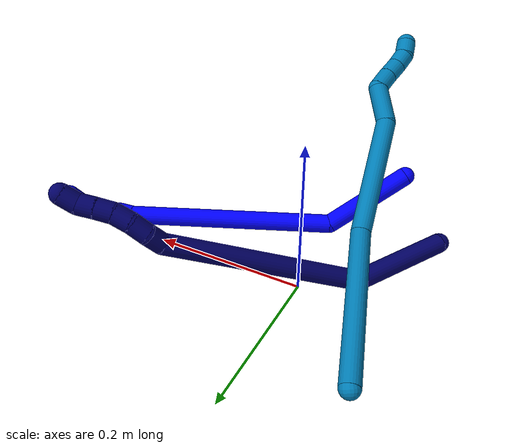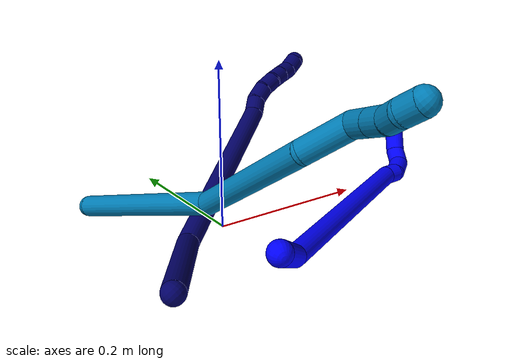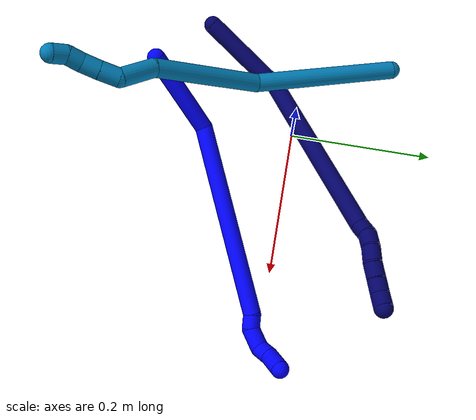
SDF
<sdf version="1.7">
 <world name="default">
  <model name="photoneo_s_sensor">
   <static>1</static>
   <pose>0 0 2 1.57079 1.57079 3.14159</pose>
   <link name="link">
    <inertial><mass>0.1</mass></inertial>
    <sensor name="sensor" type="depth">
     <update_rate>30</update_rate>
     <camera>
      <horizontal_fov>1.22</horizontal_fov>
      <image><width>1920</width><height>1200</height><format>B8G8R8</format></image>
      <clip><near>0.1</near><far>4</far></clip>
      <depth_camera><output>points</output></depth_camera>
     </camera>
     <plugin name="camera_plugin" filename="libgazebo_ros_depth_camera.so">
      <baseline>0.2</baseline>
      <alwaysOn>1</alwaysOn>
      <updateRate>0.0</updateRate>
      <cameraName>camera_ir</cameraName>
      <imageTopicName>/camera/color/image_raw</imageTopicName>
      <cameraInfoTopicName>/camera/color/camera_info</cameraInfoTopicName>
      <depthImageTopicName>/camera/depth/image_raw</depthImageTopicName>
      <depthImageCameraInfoTopicName>/camera/depth/camera_info</depthImageCameraInfoTopicName>
      <pointCloudTopicName>/camera/depth/points</pointCloudTopicName>
      <frameName>fr_optical</frameName>
      <pointCloudCutoff>0.1</pointCloudCutoff>
      <pointCloudCutoffMax>2.0</pointCloudCutoffMax>
      <distortionK1>0</distortionK1>
      <distortionK2>0</distortionK2>
      <distortionK3>0</distortionK3>
      <distortionT1>0</distortionT1>
      <distortionT2>0</distortionT2>
      <CxPrime>0</CxPrime>
      <Cx>0</Cx>
      <Cy>0</Cy>
      <focalLength>0</focalLength>
      <hackBaseline>0</hackBaseline>
     </plugin>
    </sensor>
   </link>
  </model>
  <model name="bin">
   <static>1</static>
   <link name="bottom">
    <collision name="collision-bottom">
     <pose>0 0 -0.01 0 -0 0</pose>
     <geometry><box><size>0.8 0.6 0.02</size></box></geometry>
     <surface>
      <friction><ode><mu>100</mu><mu2>100</mu2></ode></friction>
      <contact><collide_bitmask>65535</collide_bitmask></contact>
     </surface>
    </collision>
   </link>
   <link name="west_wall">
    <collision name="collision-west_wall">
     <pose>-0.41 0 0.1 0 -0 0</pose>
     <geometry><box><size>0.02 0.6 0.2</size></box></geometry>
     <surface>
      <friction><ode><mu>100</mu><mu2>100</mu2></ode></friction>
      <contact><collide_bitmask>65535</collide_bitmask></contact>
     </surface>
    </collision>
   </link>
   <link name="east_wall">
    <collision name="collision-east_wall">
     <pose>0.41 0 0.1 0 -0 0</pose>
     <geometry><box><size>0.02 0.6 0.2</size></box></geometry>
     <surface>
      <friction><ode><mu>100</mu><mu2>100</mu2></ode></friction>
      <contact><collide_bitmask>65535</collide_bitmask></contact>
     </surface>
    </collision>
   </link>
   <link name="south_wall">
    <collision name="collision-south_wall">
     <pose>0 -0.31 0.1 0 -0 0</pose>
     <geometry><box><size>0.8 0.02 0.2</size></box></geometry>
     <surface>
      <friction><ode><mu>100</mu><mu2>100</mu2></ode></friction>
      <contact><collide_bitmask>65535</collide_bitmask></contact>
     </surface>
    </collision>
   </link>
   <link name="north_wall">
    <collision name="collision-north_wall">
     <pose>0 0.31 0.1 0 -0 0</pose>
     <geometry><box><size>0.8 0.02 0.2</size></box></geometry>
     <surface>
      <friction><ode><mu>100</mu><mu2>100</mu2></ode></friction>
      <contact><collide_bitmask>65535</collide_bitmask></contact>
     </surface>
    </collision>
   </link>
  </model>
  <model name="1">
   <static>0</static>
   <link name="1">
    <collision name="collision-cylinder-e_1_1_4">
     <pose>0.040288 -0.011876 -0.043971 2.8778 0.724216 2.46786</pose>
     <geometry><cylinder><radius>0.0125</radius><length>0.121616</length></cylinder></geometry>
     <surface>
      <friction><ode><mu>1.16</mu><mu2>1.16</mu2><slip1>0</slip1><slip2>0</slip2></ode></friction>
      <contact><ode><kp>1e+06</kp><kd>1</kd><max_vel>0</max_vel><min_depth>0.001</min_depth></ode></contact>
     </surface>
    </collision>
    <visual name="visual-cylinder-e_1_1_4">
     <pose>0.040288 -0.011876 -0.043971 2.8778 0.724216 2.46786</pose>
     <geometry><cylinder><radius>0.0125</radius><length>0.121616</length></cylinder></geometry>
     <material><ambient>0 0 1 1</ambient></material>
    </visual>
    <collision name="collision-cylinder-e_2_4_5">
     <pose>0.174627 0.030493 -0.171731 -2.56705 0.755666 -1.86181</pose>
     <geometry><cylinder><radius>0.0125</radius><length>0.274288</length></cylinder></geometry>
     <surface>
      <friction><ode><mu>1.16</mu><mu2>1.16</mu2><slip1>0</slip1><slip2>0</slip2></ode></friction>
      <contact><ode><kp>1e+06</kp><kd>1</kd><max_vel>0</max_vel><min_depth>0.001</min_depth></ode></contact>
     </surface>
    </collision>
    <visual name="visual-cylinder-e_2_4_5">
     <pose>0.174627 0.030493 -0.171731 -2.56705 0.755666 -1.86181</pose>
     <geometry><cylinder><radius>0.0125</radius><length>0.274288</length></cylinder></geometry>
     <material><ambient>0 0 1 1</ambient></material>
    </visual>
    <collision name="collision-cylinder-e_3_5_6">
     <pose>0.277031 0.089479 -0.258624 -2.15048 0.974812 -1.55121</pose>
     <geometry><cylinder><radius>0.0125</radius><length>0.020189</length></cylinder></geometry>
     <surface>
      <friction><ode><mu>1.16</mu><mu2>1.16</mu2><slip1>0</slip1><slip2>0</slip2></ode></friction>
      <contact><ode><kp>1e+06</kp><kd>1</kd><max_vel>0</max_vel><min_depth>0.001</min_depth></ode></contact>
     </surface>
    </collision>
    <visual name="visual-cylinder-e_3_5_6">
     <pose>0.277031 0.089479 -0.258624 -2.15048 0.974812 -1.55121</pose>
     <geometry><cylinder><radius>0.0125</radius><length>0.020189</length></cylinder></geometry>
     <material><ambient>0 0 1 1</ambient></material>
    </visual>
    <collision name="collision-cylinder-e_4_6_7">
     <pose>0.292766 0.100703 -0.272639 -2.60549 0.526697 -1.55223</pose>
     <geometry><cylinder><radius>0.0125</radius><length>0.029365</length></cylinder></geometry>
     <surface>
      <friction><ode><mu>1.16</mu><mu2>1.16</mu2><slip1>0</slip1><slip2>0</slip2></ode></friction>
      <contact><ode><kp>1e+06</kp><kd>1</kd><max_vel>0</max_vel><min_depth>0.001</min_depth></ode></contact>
     </surface>
    </collision>
    <visual name="visual-cylinder-e_4_6_7">
     <pose>0.292766 0.100703 -0.272639 -2.60549 0.526697 -1.55223</pose>
     <geometry><cylinder><radius>0.0125</radius><length>0.029365</length></cylinder></geometry>
     <material><ambient>0 0 1 1</ambient></material>
    </visual>
    <collision name="collision-cylinder-e_5_7_8">
     <pose>0.29831 0.113572 -0.291997 -2.49426 -0.171736 0.502364</pose>
     <geometry><cylinder><radius>0.0125</radius><length>0.021492</length></cylinder></geometry>
     <surface>
      <friction><ode><mu>1.16</mu><mu2>1.16</mu2><slip1>0</slip1><slip2>0</slip2></ode></friction>
      <contact><ode><kp>1e+06</kp><kd>1</kd><max_vel>0</max_vel><min_depth>0.001</min_depth></ode></contact>
     </surface>
    </collision>
    <visual name="visual-cylinder-e_5_7_8">
     <pose>0.29831 0.113572 -0.291997 -2.49426 -0.171736 0.502364</pose>
     <geometry><cylinder><radius>0.0125</radius><length>0.021492</length></cylinder></geometry>
     <material><ambient>0 0 1 1</ambient></material>
    </visual>
    <collision name="collision-cylinder-e_6_8_2">
     <pose>0.293313 0.132792 -0.31036 -2.2286 -0.192416 0.388081</pose>
     <geometry><cylinder><radius>0.0125</radius><length>0.033049</length></cylinder></geometry>
     <surface>
      <friction><ode><mu>1.16</mu><mu2>1.16</mu2><slip1>0</slip1><slip2>0</slip2></ode></friction>
      <contact><ode><kp>1e+06</kp><kd>1</kd><max_vel>0</max_vel><min_depth>0.001</min_depth></ode></contact>
     </surface>
    </collision>
    <visual name="visual-cylinder-e_6_8_2">
     <pose>0.293313 0.132792 -0.31036 -2.2286 -0.192416 0.388081</pose>
     <geometry><cylinder><radius>0.0125</radius><length>0.033049</length></cylinder></geometry>
     <material><ambient>0 0 1 1</ambient></material>
    </visual>
    <collision name="collision-sphere-2">
     <pose>0.290153 0.145627 -0.320276 0 -0 0</pose>
     <geometry><sphere><radius>0.0125</radius></sphere></geometry>
     <surface>
      <friction><ode><mu>1.16</mu><mu2>1.16</mu2><slip1>0</slip1><slip2>0</slip2></ode></friction>
      <contact><ode><kp>1e+06</kp><kd>1</kd><max_vel>0</max_vel><min_depth>0.001</min_depth></ode></contact>
     </surface>
    </collision>
    <visual name="visual-sphere-2">
     <pose>0.290153 0.145627 -0.320276 0 -0 0</pose>
     <geometry><sphere><radius>0.0125</radius></sphere></geometry>
     <material><ambient>0 0 1 1</ambient></material>
    </visual>
    <collision name="collision-sphere-4">
     <pose>0.080577 -0.023752 -0.087942 0 -0 0</pose>
     <geometry><sphere><radius>0.0125</radius></sphere></geometry>
     <surface>
      <friction><ode><mu>1.16</mu><mu2>1.16</mu2><slip1>0</slip1><slip2>0</slip2></ode></friction>
      <contact><ode><kp>1e+06</kp><kd>1</kd><max_vel>0</max_vel><min_depth>0.001</min_depth></ode></contact>
     </surface>
    </collision>
    <visual name="visual-sphere-4">
     <pose>0.080577 -0.023752 -0.087942 0 -0 0</pose>
     <geometry><sphere><radius>0.0125</radius></sphere></geometry>
     <material><ambient>0 0 1 1</ambient></material>
    </visual>
    <collision name="collision-sphere-1">
     <geometry><sphere><radius>0.0125</radius></sphere></geometry>
     <surface>
      <friction><ode><mu>1.16</mu><mu2>1.16</mu2><slip1>0</slip1><slip2>0</slip2></ode></friction>
      <contact><ode><kp>1e+06</kp><kd>1</kd><max_vel>0</max_vel><min_depth>0.001</min_depth></ode></contact>
     </surface>
    </collision>
    <visual name="visual-sphere-1">
     <geometry><sphere><radius>0.0125</radius></sphere></geometry>
     <material><ambient>0 0 1 1</ambient></material>
    </visual>
    <collision name="collision-sphere-8">
     <pose>0.296473 0.119957 -0.300443 0 -0 0</pose>
     <geometry><sphere><radius>0.0125</radius></sphere></geometry>
     <surface>
      <friction><ode><mu>1.16</mu><mu2>1.16</mu2><slip1>0</slip1><slip2>0</slip2></ode></friction>
      <contact><ode><kp>1e+06</kp><kd>1</kd><max_vel>0</max_vel><min_depth>0.001</min_depth></ode></contact>
     </surface>
    </collision>
    <visual name="visual-sphere-8">
     <pose>0.296473 0.119957 -0.300443 0 -0 0</pose>
     <geometry><sphere><radius>0.0125</radius></sphere></geometry>
     <material><ambient>0 0 1 1</ambient></material>
    </visual>
    <collision name="collision-sphere-5">
     <pose>0.268676 0.084739 -0.25552 0 -0 0</pose>
     <geometry><sphere><radius>0.0125</radius></sphere></geometry>
     <surface>
      <friction><ode><mu>1.16</mu><mu2>1.16</mu2><slip1>0</slip1><slip2>0</slip2></ode></friction>
      <contact><ode><kp>1e+06</kp><kd>1</kd><max_vel>0</max_vel><min_depth>0.001</min_depth></ode></contact>
     </surface>
    </collision>
    <visual name="visual-sphere-5">
     <pose>0.268676 0.084739 -0.25552 0 -0 0</pose>
     <geometry><sphere><radius>0.0125</radius></sphere></geometry>
     <material><ambient>0 0 1 1</ambient></material>
    </visual>
    <collision name="collision-sphere-6">
     <pose>0.285385 0.09422 -0.261728 0 -0 0</pose>
     <geometry><sphere><radius>0.0125</radius></sphere></geometry>
     <surface>
      <friction><ode><mu>1.16</mu><mu2>1.16</mu2><slip1>0</slip1><slip2>0</slip2></ode></friction>
      <contact><ode><kp>1e+06</kp><kd>1</kd><max_vel>0</max_vel><min_depth>0.001</min_depth></ode></contact>
     </surface>
    </collision>
    <visual name="visual-sphere-6">
     <pose>0.285385 0.09422 -0.261728 0 -0 0</pose>
     <geometry><sphere><radius>0.0125</radius></sphere></geometry>
     <material><ambient>0 0 1 1</ambient></material>
    </visual>
    <collision name="collision-sphere-7">
     <pose>0.300146 0.107187 -0.283551 0 -0 0</pose>
     <geometry><sphere><radius>0.0125</radius></sphere></geometry>
     <surface>
      <friction><ode><mu>1.16</mu><mu2>1.16</mu2><slip1>0</slip1><slip2>0</slip2></ode></friction>
      <contact><ode><kp>1e+06</kp><kd>1</kd><max_vel>0</max_vel><min_depth>0.001</min_depth></ode></contact>
     </surface>
    </collision>
    <visual name="visual-sphere-7">
     <pose>0.300146 0.107187 -0.283551 0 -0 0</pose>
     <geometry><sphere><radius>0.0125</radius></sphere></geometry>
     <material><ambient>0 0 1 1</ambient></material>
    </visual>
    <inertial>
     <pose>0.166186 0.037026 -0.164423 0 -0 0</pose>
     <mass>0.5</mass>
     <inertia>
      <ixx>-0.001559</ixx>
      <ixy>0</ixy>
      <ixz>0</ixz>
      <iyy>4.2e-05</iyy>
      <iyz>0</iyz>
      <izz>-0.001977</izz>
     </inertia>
    </inertial>
   </link>
   <pose>-0.065955 -0.200768 0.070045 1.62374 0.553104 -0.212474</pose>
  </model>
  <model name="7">
   <static>0</static>
   <link name="7">
    <collision name="collision-cylinder-e_1_1_4">
     <pose>0.045924 0.041514 0.00925 -1.35156 0.823718 -0.67374</pose>
     <geometry><cylinder><radius>0.0125</radius><length>0.125187</length></cylinder></geometry>
     <surface>
      <friction><ode><mu>1.16</mu><mu2>1.16</mu2><slip1>0</slip1><slip2>0</slip2></ode></friction>
      <contact><ode><kp>1e+06</kp><kd>1</kd><max_vel>0</max_vel><min_depth>0.001</min_depth></ode></contact>
     </surface>
    </collision>
    <visual name="visual-cylinder-e_1_1_4">
     <pose>0.045924 0.041514 0.00925 -1.35156 0.823718 -0.67374</pose>
     <geometry><cylinder><radius>0.0125</radius><length>0.125187</length></cylinder></geometry>
     <material><ambient>0.003922 0 0.403922 1</ambient></material>
    </visual>
    <collision name="collision-cylinder-e_2_4_5">
     <pose>0.210475 0.104091 0.049518 -0.596523 1.26467 -0.443115</pose>
     <geometry><cylinder><radius>0.0125</radius><length>0.248825</length></cylinder></geometry>
     <surface>
      <friction><ode><mu>1.16</mu><mu2>1.16</mu2><slip1>0</slip1><slip2>0</slip2></ode></friction>
      <contact><ode><kp>1e+06</kp><kd>1</kd><max_vel>0</max_vel><min_depth>0.001</min_depth></ode></contact>
     </surface>
    </collision>
    <visual name="visual-cylinder-e_2_4_5">
     <pose>0.210475 0.104091 0.049518 -0.596523 1.26467 -0.443115</pose>
     <geometry><cylinder><radius>0.0125</radius><length>0.248825</length></cylinder></geometry>
     <material><ambient>0.003922 0 0.403922 1</ambient></material>
    </visual>
    <collision name="collision-cylinder-e_3_5_6">
     <pose>0.337878 0.123596 0.086468 0.256786 0.960813 0.134356</pose>
     <geometry><cylinder><radius>0.0125</radius><length>0.02141</length></cylinder></geometry>
     <surface>
      <friction><ode><mu>1.16</mu><mu2>1.16</mu2><slip1>0</slip1><slip2>0</slip2></ode></friction>
      <contact><ode><kp>1e+06</kp><kd>1</kd><max_vel>0</max_vel><min_depth>0.001</min_depth></ode></contact>
     </surface>
    </collision>
    <visual name="visual-cylinder-e_3_5_6">
     <pose>0.337878 0.123596 0.086468 0.256786 0.960813 0.134356</pose>
     <geometry><cylinder><radius>0.0125</radius><length>0.02141</length></cylinder></geometry>
     <material><ambient>0.003922 0 0.403922 1</ambient></material>
    </visual>
    <collision name="collision-cylinder-e_4_6_7">
     <pose>0.356864 0.119319 0.095008 0.806145 1.21725 0.577698</pose>
     <geometry><cylinder><radius>0.0125</radius><length>0.02177</length></cylinder></geometry>
     <surface>
      <friction><ode><mu>1.16</mu><mu2>1.16</mu2><slip1>0</slip1><slip2>0</slip2></ode></friction>
      <contact><ode><kp>1e+06</kp><kd>1</kd><max_vel>0</max_vel><min_depth>0.001</min_depth></ode></contact>
     </surface>
    </collision>
    <visual name="visual-cylinder-e_4_6_7">
     <pose>0.356864 0.119319 0.095008 0.806145 1.21725 0.577698</pose>
     <geometry><cylinder><radius>0.0125</radius><length>0.02177</length></cylinder></geometry>
     <material><ambient>0.003922 0 0.403922 1</ambient></material>
    </visual>
    <collision name="collision-cylinder-e_5_7_8">
     <pose>0.377735 0.114725 0.097732 1.5097 1.39633 1.33647</pose>
     <geometry><cylinder><radius>0.0125</radius><length>0.021645</length></cylinder></geometry>
     <surface>
      <friction><ode><mu>1.16</mu><mu2>1.16</mu2><slip1>0</slip1><slip2>0</slip2></ode></friction>
      <contact><ode><kp>1e+06</kp><kd>1</kd><max_vel>0</max_vel><min_depth>0.001</min_depth></ode></contact>
     </surface>
    </collision>
    <visual name="visual-cylinder-e_5_7_8">
     <pose>0.377735 0.114725 0.097732 1.5097 1.39633 1.33647</pose>
     <geometry><cylinder><radius>0.0125</radius><length>0.021645</length></cylinder></geometry>
     <material><ambient>0.003922 0 0.403922 1</ambient></material>
    </visual>
    <collision name="collision-cylinder-e_6_8_9">
     <pose>0.39855 0.113434 0.097539 -2.05523 1.50588 -1.9969</pose>
     <geometry><cylinder><radius>0.0125</radius><length>0.020357</length></cylinder></geometry>
     <surface>
      <friction><ode><mu>1.16</mu><mu2>1.16</mu2><slip1>0</slip1><slip2>0</slip2></ode></friction>
      <contact><ode><kp>1e+06</kp><kd>1</kd><max_vel>0</max_vel><min_depth>0.001</min_depth></ode></contact>
     </surface>
    </collision>
    <visual name="visual-cylinder-e_6_8_9">
     <pose>0.39855 0.113434 0.097539 -2.05523 1.50588 -1.9969</pose>
     <geometry><cylinder><radius>0.0125</radius><length>0.020357</length></cylinder></geometry>
     <material><ambient>0.003922 0 0.403922 1</ambient></material>
    </visual>
    <collision name="collision-cylinder-e_7_9_10">
     <pose>0.418656 0.114887 0.096637 -2.17078 1.46539 -2.08108</pose>
     <geometry><cylinder><radius>0.0125</radius><length>0.020009</length></cylinder></geometry>
     <surface>
      <friction><ode><mu>1.16</mu><mu2>1.16</mu2><slip1>0</slip1><slip2>0</slip2></ode></friction>
      <contact><ode><kp>1e+06</kp><kd>1</kd><max_vel>0</max_vel><min_depth>0.001</min_depth></ode></contact>
     </surface>
    </collision>
    <visual name="visual-cylinder-e_7_9_10">
     <pose>0.418656 0.114887 0.096637 -2.17078 1.46539 -2.08108</pose>
     <geometry><cylinder><radius>0.0125</radius><length>0.020009</length></cylinder></geometry>
     <material><ambient>0.003922 0 0.403922 1</ambient></material>
    </visual>
    <collision name="collision-cylinder-e_8_10_2">
     <pose>0.438689 0.113963 0.097838 0.784677 1.32431 0.624078</pose>
     <geometry><cylinder><radius>0.0125</radius><length>0.020796</length></cylinder></geometry>
     <surface>
      <friction><ode><mu>1.16</mu><mu2>1.16</mu2><slip1>0</slip1><slip2>0</slip2></ode></friction>
      <contact><ode><kp>1e+06</kp><kd>1</kd><max_vel>0</max_vel><min_depth>0.001</min_depth></ode></contact>
     </surface>
    </collision>
    <visual name="visual-cylinder-e_8_10_2">
     <pose>0.438689 0.113963 0.097838 0.784677 1.32431 0.624078</pose>
     <geometry><cylinder><radius>0.0125</radius><length>0.020796</length></cylinder></geometry>
     <material><ambient>0.003922 0 0.403922 1</ambient></material>
    </visual>
    <collision name="collision-sphere-2">
     <pose>0.448773 0.11217 0.099634 0 -0 0</pose>
     <geometry><sphere><radius>0.0125</radius></sphere></geometry>
     <surface>
      <friction><ode><mu>1.16</mu><mu2>1.16</mu2><slip1>0</slip1><slip2>0</slip2></ode></friction>
      <contact><ode><kp>1e+06</kp><kd>1</kd><max_vel>0</max_vel><min_depth>0.001</min_depth></ode></contact>
     </surface>
    </collision>
    <visual name="visual-sphere-2">
     <pose>0.448773 0.11217 0.099634 0 -0 0</pose>
     <geometry><sphere><radius>0.0125</radius></sphere></geometry>
     <material><ambient>0.003922 0 0.403922 1</ambient></material>
    </visual>
    <collision name="collision-sphere-10">
     <pose>0.428605 0.115756 0.096043 0 -0 0</pose>
     <geometry><sphere><radius>0.0125</radius></sphere></geometry>
     <surface>
      <friction><ode><mu>1.16</mu><mu2>1.16</mu2><slip1>0</slip1><slip2>0</slip2></ode></friction>
      <contact><ode><kp>1e+06</kp><kd>1</kd><max_vel>0</max_vel><min_depth>0.001</min_depth></ode></contact>
     </surface>
    </collision>
    <visual name="visual-sphere-10">
     <pose>0.428605 0.115756 0.096043 0 -0 0</pose>
     <geometry><sphere><radius>0.0125</radius></sphere></geometry>
     <material><ambient>0.003922 0 0.403922 1</ambient></material>
    </visual>
    <collision name="collision-sphere-9">
     <pose>0.408707 0.114018 0.097232 0 -0 0</pose>
     <geometry><sphere><radius>0.0125</radius></sphere></geometry>
     <surface>
      <friction><ode><mu>1.16</mu><mu2>1.16</mu2><slip1>0</slip1><slip2>0</slip2></ode></friction>
      <contact><ode><kp>1e+06</kp><kd>1</kd><max_vel>0</max_vel><min_depth>0.001</min_depth></ode></contact>
     </surface>
    </collision>
    <visual name="visual-sphere-9">
     <pose>0.408707 0.114018 0.097232 0 -0 0</pose>
     <geometry><sphere><radius>0.0125</radius></sphere></geometry>
     <material><ambient>0.003922 0 0.403922 1</ambient></material>
    </visual>
    <collision name="collision-sphere-4">
     <pose>0.091847 0.083028 0.0185 0 -0 0</pose>
     <geometry><sphere><radius>0.0125</radius></sphere></geometry>
     <surface>
      <friction><ode><mu>1.16</mu><mu2>1.16</mu2><slip1>0</slip1><slip2>0</slip2></ode></friction>
      <contact><ode><kp>1e+06</kp><kd>1</kd><max_vel>0</max_vel><min_depth>0.001</min_depth></ode></contact>
     </surface>
    </collision>
    <visual name="visual-sphere-4">
     <pose>0.091847 0.083028 0.0185 0 -0 0</pose>
     <geometry><sphere><radius>0.0125</radius></sphere></geometry>
     <material><ambient>0.003922 0 0.403922 1</ambient></material>
    </visual>
    <collision name="collision-sphere-1">
     <geometry><sphere><radius>0.0125</radius></sphere></geometry>
     <surface>
      <friction><ode><mu>1.16</mu><mu2>1.16</mu2><slip1>0</slip1><slip2>0</slip2></ode></friction>
      <contact><ode><kp>1e+06</kp><kd>1</kd><max_vel>0</max_vel><min_depth>0.001</min_depth></ode></contact>
     </surface>
    </collision>
    <visual name="visual-sphere-1">
     <geometry><sphere><radius>0.0125</radius></sphere></geometry>
     <material><ambient>0.003922 0 0.403922 1</ambient></material>
    </visual>
    <collision name="collision-sphere-8">
     <pose>0.388393 0.112849 0.097847 0 -0 0</pose>
     <geometry><sphere><radius>0.0125</radius></sphere></geometry>
     <surface>
      <friction><ode><mu>1.16</mu><mu2>1.16</mu2><slip1>0</slip1><slip2>0</slip2></ode></friction>
      <contact><ode><kp>1e+06</kp><kd>1</kd><max_vel>0</max_vel><min_depth>0.001</min_depth></ode></contact>
     </surface>
    </collision>
    <visual name="visual-sphere-8">
     <pose>0.388393 0.112849 0.097847 0 -0 0</pose>
     <geometry><sphere><radius>0.0125</radius></sphere></geometry>
     <material><ambient>0.003922 0 0.403922 1</ambient></material>
    </visual>
    <collision name="collision-sphere-5">
     <pose>0.329104 0.125154 0.080537 0 -0 0</pose>
     <geometry><sphere><radius>0.0125</radius></sphere></geometry>
     <surface>
      <friction><ode><mu>1.16</mu><mu2>1.16</mu2><slip1>0</slip1><slip2>0</slip2></ode></friction>
      <contact><ode><kp>1e+06</kp><kd>1</kd><max_vel>0</max_vel><min_depth>0.001</min_depth></ode></contact>
     </surface>
    </collision>
    <visual name="visual-sphere-5">
     <pose>0.329104 0.125154 0.080537 0 -0 0</pose>
     <geometry><sphere><radius>0.0125</radius></sphere></geometry>
     <material><ambient>0.003922 0 0.403922 1</ambient></material>
    </visual>
    <collision name="collision-sphere-6">
     <pose>0.346653 0.122039 0.092399 0 -0 0</pose>
     <geometry><sphere><radius>0.0125</radius></sphere></geometry>
     <surface>
      <friction><ode><mu>1.16</mu><mu2>1.16</mu2><slip1>0</slip1><slip2>0</slip2></ode></friction>
      <contact><ode><kp>1e+06</kp><kd>1</kd><max_vel>0</max_vel><min_depth>0.001</min_depth></ode></contact>
     </surface>
    </collision>
    <visual name="visual-sphere-6">
     <pose>0.346653 0.122039 0.092399 0 -0 0</pose>
     <geometry><sphere><radius>0.0125</radius></sphere></geometry>
     <material><ambient>0.003922 0 0.403922 1</ambient></material>
    </visual>
    <collision name="collision-sphere-7">
     <pose>0.367076 0.1166 0.097617 0 -0 0</pose>
     <geometry><sphere><radius>0.0125</radius></sphere></geometry>
     <surface>
      <friction><ode><mu>1.16</mu><mu2>1.16</mu2><slip1>0</slip1><slip2>0</slip2></ode></friction>
      <contact><ode><kp>1e+06</kp><kd>1</kd><max_vel>0</max_vel><min_depth>0.001</min_depth></ode></contact>
     </surface>
    </collision>
    <visual name="visual-sphere-7">
     <pose>0.367076 0.1166 0.097617 0 -0 0</pose>
     <geometry><sphere><radius>0.0125</radius></sphere></geometry>
     <material><ambient>0.003922 0 0.403922 1</ambient></material>
    </visual>
    <inertial>
     <pose>0.213826 0.091605 0.050937 0 -0 0</pose>
     <mass>0.5</mass>
     <inertia>
      <ixx>0.000241</ixx>
      <ixy>0</ixy>
      <ixz>0</ixz>
      <iyy>0.001148</iyy>
      <iyz>0</iyz>
      <izz>-0.001688</izz>
     </inertia>
    </inertial>
   </link>
   <pose>-0.136425 -0.136461 0.025081 -0.742139 -0.300072 0.332633</pose>
  </model>
  <model name="9">
   <static>0</static>
   <link name="9">
    <collision name="collision-cylinder-e_1_1_4">
     <pose>0.000527 -0.056488 0.084005 0.591991 0.005204 0.001587</pose>
     <geometry><cylinder><radius>0.0125</radius><length>0.202465</length></cylinder></geometry>
     <surface>
      <friction><ode><mu>1.16</mu><mu2>1.16</mu2><slip1>0</slip1><slip2>0</slip2></ode></friction>
      <contact><ode><kp>1e+06</kp><kd>1</kd><max_vel>0</max_vel><min_depth>0.001</min_depth></ode></contact>
     </surface>
    </collision>
    <visual name="visual-cylinder-e_1_1_4">
     <pose>0.000527 -0.056488 0.084005 0.591991 0.005204 0.001587</pose>
     <geometry><cylinder><radius>0.0125</radius><length>0.202465</length></cylinder></geometry>
     <material><ambient>0 0.490196 0.709804 1</ambient></material>
    </visual>
    <collision name="collision-cylinder-e_2_4_5">
     <pose>-0.017376 -0.137271 0.239493 0.327612 -0.239415 -0.039757</pose>
     <geometry><cylinder><radius>0.0125</radius><length>0.155431</length></cylinder></geometry>
     <surface>
      <friction><ode><mu>1.16</mu><mu2>1.16</mu2><slip1>0</slip1><slip2>0</slip2></ode></friction>
      <contact><ode><kp>1e+06</kp><kd>1</kd><max_vel>0</max_vel><min_depth>0.001</min_depth></ode></contact>
     </surface>
    </collision>
    <visual name="visual-cylinder-e_2_4_5">
     <pose>-0.017376 -0.137271 0.239493 0.327612 -0.239415 -0.039757</pose>
     <geometry><cylinder><radius>0.0125</radius><length>0.155431</length></cylinder></geometry>
     <material><ambient>0 0.490196 0.709804 1</ambient></material>
    </visual>
    <collision name="collision-cylinder-e_3_5_6">
     <pose>-0.032521 -0.166083 0.336455 0.175479 0.126226 0.011118</pose>
     <geometry><cylinder><radius>0.0125</radius><length>0.052167</length></cylinder></geometry>
     <surface>
      <friction><ode><mu>1.16</mu><mu2>1.16</mu2><slip1>0</slip1><slip2>0</slip2></ode></friction>
      <contact><ode><kp>1e+06</kp><kd>1</kd><max_vel>0</max_vel><min_depth>0.001</min_depth></ode></contact>
     </surface>
    </collision>
    <visual name="visual-cylinder-e_3_5_6">
     <pose>-0.032521 -0.166083 0.336455 0.175479 0.126226 0.011118</pose>
     <geometry><cylinder><radius>0.0125</radius><length>0.052167</length></cylinder></geometry>
     <material><ambient>0 0.490196 0.709804 1</ambient></material>
    </visual>
    <collision name="collision-cylinder-e_4_6_7">
     <pose>-0.03489 -0.178106 0.371232 0.67912 -0.441832 -0.158332</pose>
     <geometry><cylinder><radius>0.0125</radius><length>0.026439</length></cylinder></geometry>
     <surface>
      <friction><ode><mu>1.16</mu><mu2>1.16</mu2><slip1>0</slip1><slip2>0</slip2></ode></friction>
      <contact><ode><kp>1e+06</kp><kd>1</kd><max_vel>0</max_vel><min_depth>0.001</min_depth></ode></contact>
     </surface>
    </collision>
    <visual name="visual-cylinder-e_4_6_7">
     <pose>-0.03489 -0.178106 0.371232 0.67912 -0.441832 -0.158332</pose>
     <geometry><cylinder><radius>0.0125</radius><length>0.026439</length></cylinder></geometry>
     <material><ambient>0 0.490196 0.709804 1</ambient></material>
    </visual>
    <collision name="collision-cylinder-e_5_7_8">
     <pose>-0.046055 -0.192176 0.388456 0.691661 -0.491769 -0.180358</pose>
     <geometry><cylinder><radius>0.0125</radius><length>0.023349</length></cylinder></geometry>
     <surface>
      <friction><ode><mu>1.16</mu><mu2>1.16</mu2><slip1>0</slip1><slip2>0</slip2></ode></friction>
      <contact><ode><kp>1e+06</kp><kd>1</kd><max_vel>0</max_vel><min_depth>0.001</min_depth></ode></contact>
     </surface>
    </collision>
    <visual name="visual-cylinder-e_5_7_8">
     <pose>-0.046055 -0.192176 0.388456 0.691661 -0.491769 -0.180358</pose>
     <geometry><cylinder><radius>0.0125</radius><length>0.023349</length></cylinder></geometry>
     <material><ambient>0 0.490196 0.709804 1</ambient></material>
    </visual>
    <collision name="collision-cylinder-e_6_8_9">
     <pose>-0.057003 -0.202591 0.403925 0.472051 -0.570573 -0.140843</pose>
     <geometry><cylinder><radius>0.0125</radius><length>0.020128</length></cylinder></geometry>
     <surface>
      <friction><ode><mu>1.16</mu><mu2>1.16</mu2><slip1>0</slip1><slip2>0</slip2></ode></friction>
      <contact><ode><kp>1e+06</kp><kd>1</kd><max_vel>0</max_vel><min_depth>0.001</min_depth></ode></contact>
     </surface>
    </collision>
    <visual name="visual-cylinder-e_6_8_9">
     <pose>-0.057003 -0.202591 0.403925 0.472051 -0.570573 -0.140843</pose>
     <geometry><cylinder><radius>0.0125</radius><length>0.020128</length></cylinder></geometry>
     <material><ambient>0 0.490196 0.709804 1</ambient></material>
    </visual>
    <collision name="collision-cylinder-e_7_9_2">
     <pose>-0.064282 -0.209622 0.420781 0.329116 -0.18523 -0.030845</pose>
     <geometry><cylinder><radius>0.0125</radius><length>0.020022</length></cylinder></geometry>
     <surface>
      <friction><ode><mu>1.16</mu><mu2>1.16</mu2><slip1>0</slip1><slip2>0</slip2></ode></friction>
      <contact><ode><kp>1e+06</kp><kd>1</kd><max_vel>0</max_vel><min_depth>0.001</min_depth></ode></contact>
     </surface>
    </collision>
    <visual name="visual-cylinder-e_7_9_2">
     <pose>-0.064282 -0.209622 0.420781 0.329116 -0.18523 -0.030845</pose>
     <geometry><cylinder><radius>0.0125</radius><length>0.020022</length></cylinder></geometry>
     <material><ambient>0 0.490196 0.709804 1</ambient></material>
    </visual>
    <collision name="collision-sphere-2">
     <pose>-0.066126 -0.212802 0.430092 0 -0 0</pose>
     <geometry><sphere><radius>0.0125</radius></sphere></geometry>
     <surface>
      <friction><ode><mu>1.16</mu><mu2>1.16</mu2><slip1>0</slip1><slip2>0</slip2></ode></friction>
      <contact><ode><kp>1e+06</kp><kd>1</kd><max_vel>0</max_vel><min_depth>0.001</min_depth></ode></contact>
     </surface>
    </collision>
    <visual name="visual-sphere-2">
     <pose>-0.066126 -0.212802 0.430092 0 -0 0</pose>
     <geometry><sphere><radius>0.0125</radius></sphere></geometry>
     <material><ambient>0 0.490196 0.709804 1</ambient></material>
    </visual>
    <collision name="collision-sphere-9">
     <pose>-0.062439 -0.206442 0.411469 0 -0 0</pose>
     <geometry><sphere><radius>0.0125</radius></sphere></geometry>
     <surface>
      <friction><ode><mu>1.16</mu><mu2>1.16</mu2><slip1>0</slip1><slip2>0</slip2></ode></friction>
      <contact><ode><kp>1e+06</kp><kd>1</kd><max_vel>0</max_vel><min_depth>0.001</min_depth></ode></contact>
     </surface>
    </collision>
    <visual name="visual-sphere-9">
     <pose>-0.062439 -0.206442 0.411469 0 -0 0</pose>
     <geometry><sphere><radius>0.0125</radius></sphere></geometry>
     <material><ambient>0 0.490196 0.709804 1</ambient></material>
    </visual>
    <collision name="collision-sphere-4">
     <pose>0.001054 -0.112977 0.168009 0 -0 0</pose>
     <geometry><sphere><radius>0.0125</radius></sphere></geometry>
     <surface>
      <friction><ode><mu>1.16</mu><mu2>1.16</mu2><slip1>0</slip1><slip2>0</slip2></ode></friction>
      <contact><ode><kp>1e+06</kp><kd>1</kd><max_vel>0</max_vel><min_depth>0.001</min_depth></ode></contact>
     </surface>
    </collision>
    <visual name="visual-sphere-4">
     <pose>0.001054 -0.112977 0.168009 0 -0 0</pose>
     <geometry><sphere><radius>0.0125</radius></sphere></geometry>
     <material><ambient>0 0.490196 0.709804 1</ambient></material>
    </visual>
    <collision name="collision-sphere-1">
     <geometry><sphere><radius>0.0125</radius></sphere></geometry>
     <surface>
      <friction><ode><mu>1.16</mu><mu2>1.16</mu2><slip1>0</slip1><slip2>0</slip2></ode></friction>
      <contact><ode><kp>1e+06</kp><kd>1</kd><max_vel>0</max_vel><min_depth>0.001</min_depth></ode></contact>
     </surface>
    </collision>
    <visual name="visual-sphere-1">
     <geometry><sphere><radius>0.0125</radius></sphere></geometry>
     <material><ambient>0 0.490196 0.709804 1</ambient></material>
    </visual>
    <collision name="collision-sphere-8">
     <pose>-0.051567 -0.198739 0.396382 0 -0 0</pose>
     <geometry><sphere><radius>0.0125</radius></sphere></geometry>
     <surface>
      <friction><ode><mu>1.16</mu><mu2>1.16</mu2><slip1>0</slip1><slip2>0</slip2></ode></friction>
      <contact><ode><kp>1e+06</kp><kd>1</kd><max_vel>0</max_vel><min_depth>0.001</min_depth></ode></contact>
     </surface>
    </collision>
    <visual name="visual-sphere-8">
     <pose>-0.051567 -0.198739 0.396382 0 -0 0</pose>
     <geometry><sphere><radius>0.0125</radius></sphere></geometry>
     <material><ambient>0 0.490196 0.709804 1</ambient></material>
    </visual>
    <collision name="collision-sphere-5">
     <pose>-0.035805 -0.161565 0.310976 0 -0 0</pose>
     <geometry><sphere><radius>0.0125</radius></sphere></geometry>
     <surface>
      <friction><ode><mu>1.16</mu><mu2>1.16</mu2><slip1>0</slip1><slip2>0</slip2></ode></friction>
      <contact><ode><kp>1e+06</kp><kd>1</kd><max_vel>0</max_vel><min_depth>0.001</min_depth></ode></contact>
     </surface>
    </collision>
    <visual name="visual-sphere-5">
     <pose>-0.035805 -0.161565 0.310976 0 -0 0</pose>
     <geometry><sphere><radius>0.0125</radius></sphere></geometry>
     <material><ambient>0 0.490196 0.709804 1</ambient></material>
    </visual>
    <collision name="collision-sphere-6">
     <pose>-0.029237 -0.1706 0.361933 0 -0 0</pose>
     <geometry><sphere><radius>0.0125</radius></sphere></geometry>
     <surface>
      <friction><ode><mu>1.16</mu><mu2>1.16</mu2><slip1>0</slip1><slip2>0</slip2></ode></friction>
      <contact><ode><kp>1e+06</kp><kd>1</kd><max_vel>0</max_vel><min_depth>0.001</min_depth></ode></contact>
     </surface>
    </collision>
    <visual name="visual-sphere-6">
     <pose>-0.029237 -0.1706 0.361933 0 -0 0</pose>
     <geometry><sphere><radius>0.0125</radius></sphere></geometry>
     <material><ambient>0 0.490196 0.709804 1</ambient></material>
    </visual>
    <collision name="collision-sphere-7">
     <pose>-0.040542 -0.185612 0.38053 0 -0 0</pose>
     <geometry><sphere><radius>0.0125</radius></sphere></geometry>
     <surface>
      <friction><ode><mu>1.16</mu><mu2>1.16</mu2><slip1>0</slip1><slip2>0</slip2></ode></friction>
      <contact><ode><kp>1e+06</kp><kd>1</kd><max_vel>0</max_vel><min_depth>0.001</min_depth></ode></contact>
     </surface>
    </collision>
    <visual name="visual-sphere-7">
     <pose>-0.040542 -0.185612 0.38053 0 -0 0</pose>
     <geometry><sphere><radius>0.0125</radius></sphere></geometry>
     <material><ambient>0 0.490196 0.709804 1</ambient></material>
    </visual>
    <inertial>
     <pose>-0.017445 -0.117816 0.214448 0 -0 0</pose>
     <mass>0.5</mass>
     <inertia>
      <ixx>0.001012</ixx>
      <ixy>0</ixy>
      <ixz>0</ixz>
      <iyy>0.000875</iyy>
      <iyz>0</iyz>
      <izz>0.000603</izz>
     </inertia>
    </inertial>
   </link>
   <pose>-0.115569 0.126108 0.012084 0.696787 0.364303 0.211084</pose>
  </model>
 </world>
</sdf>
